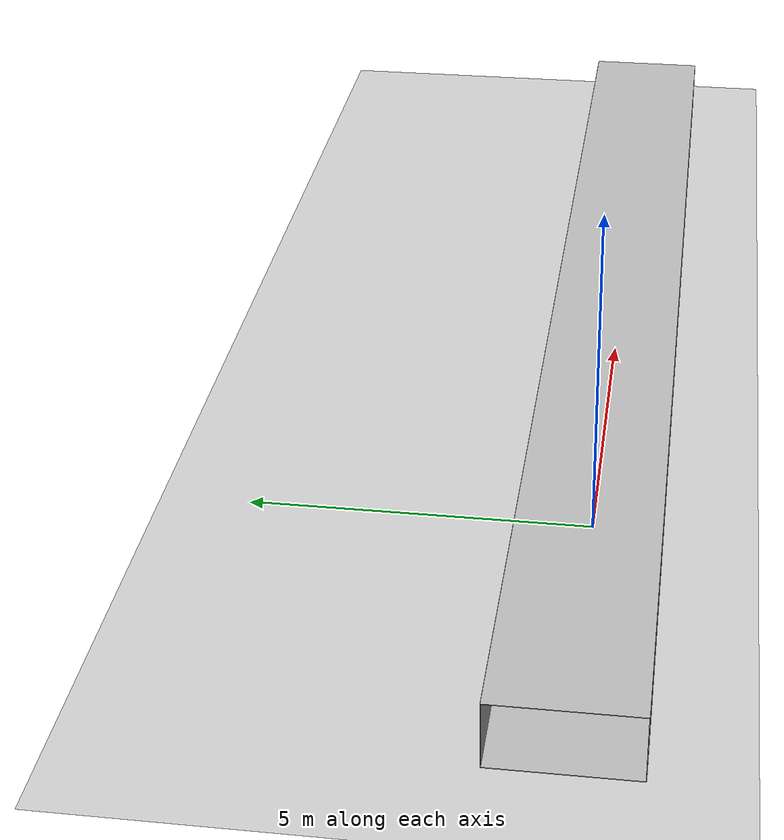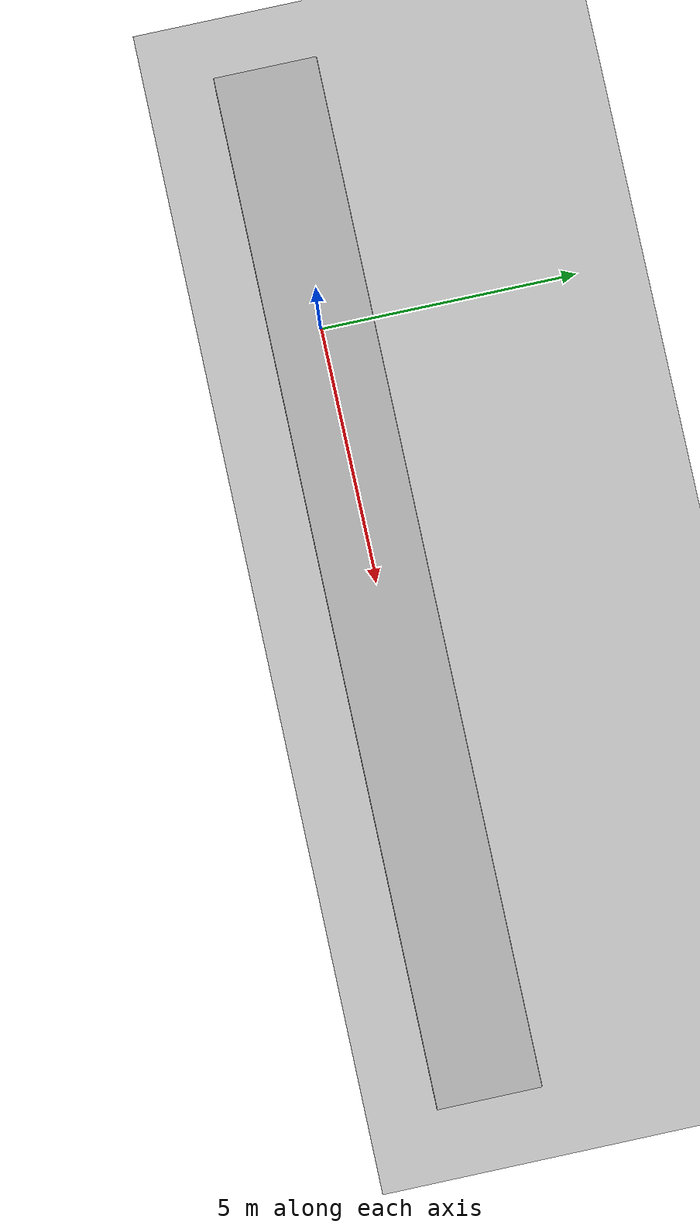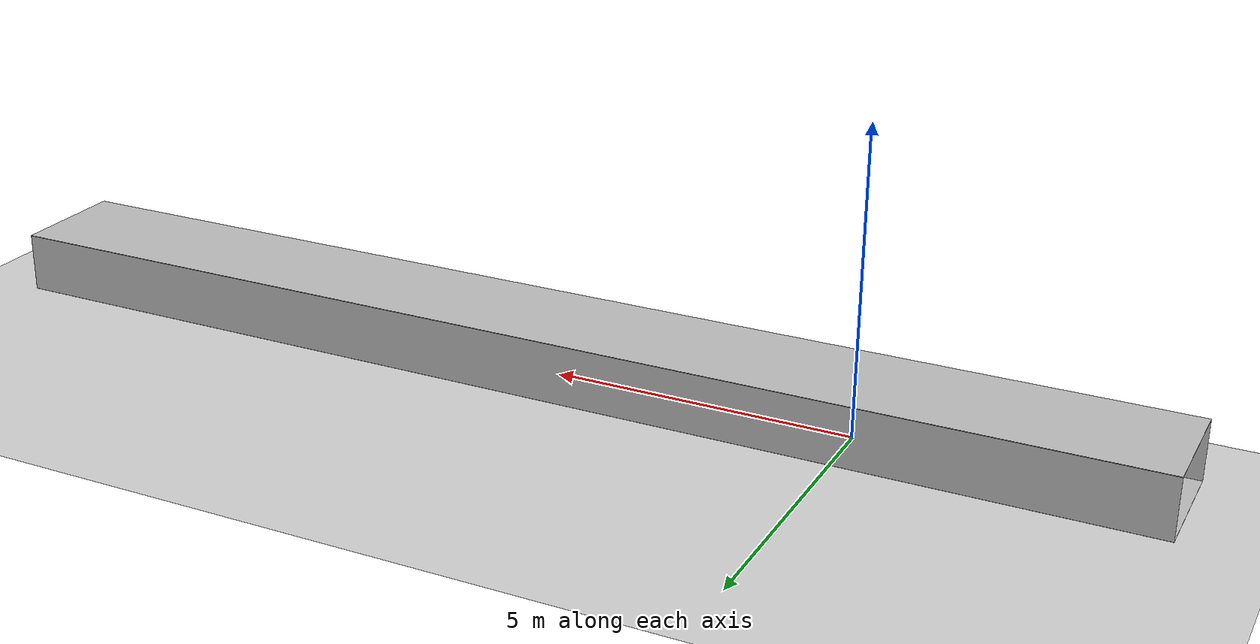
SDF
<sdf version="1.6">
 <world name="default">
  <gravity>0.0 0.0 -9.81</gravity>
  <include><uri>model://sun</uri></include>
  <include><uri>model://ground_plane</uri></include>
  <include><uri>model://hallway_short</uri></include>
 </world>
</sdf>

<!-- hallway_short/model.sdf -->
<sdf version="1.4">
  <model name="hallway">
    <static>true</static>
    <link name="right_wall">
      <pose>5 -1. 0.5 0 0 0</pose>
      <visual name="visual">
        <geometry>
          <box>
            <size>20 0.01 1.0</size>
          </box>
        </geometry>
        <material>
          <script>
            <uri>model://hallway/materials/scripts</uri>
            <name>feature_1</name>
          </script>
        </material>
      </visual>
      <collision name = "collision">
        <geometry>
        <box>
            <size>20 0.01 1.0</size>
          </box>
        </geometry>
      </collision>
    </link>
    <link name="left_wall">
      <pose>5 1 0.5 0 0 0</pose>
      <visual name="visual">
        <geometry>
          <box>
            <size>20 0.01 1.0</size>
          </box>
        </geometry>
        <material>
          <script>
            <uri>model://hallway/materials/scripts</uri>
            <name>feature_2</name>
          </script>
        </material>
      </visual>
      <collision name = "collision">
        <geometry>
        <box>
            <size>20 0.01 1.0</size>
          </box>
        </geometry>
      </collision>
    </link>
    <link name="bot_wall">
      <pose>5 0 0 0 0 0</pose>
      <visual name="visual">
        <geometry>
          <box>
            <size>20 2.0 0.01</size>
          </box>
        </geometry>
        <material>
          <script>
            <uri>model://hallway/materials/scripts</uri>
            <name>feature_3</name>
          </script>
        </material>
      </visual>
      <collision name = "collision">
        <geometry>
        <box>
            <size>20 2.0 0.01</size>
          </box>
        </geometry>
      </collision>
    </link>
    <link name="top_wall">
      <pose>5 0 1.0 0 0 0</pose>
      <visual name="visual">
        <geometry>
          <box>
            <size>20 2.0 0.01</size>
          </box>
        </geometry>
        <material>
          <script>
            <uri>model://hallway/materials/scripts</uri>
            <name>feature_4</name>
          </script>
        </material>
      </visual>
      <collision name = "collision">
        <geometry>
        <box>
            <size>20 2.0 0.01</size>
          </box>
        </geometry>
      </collision>
    </link>
  </model>
</sdf>
